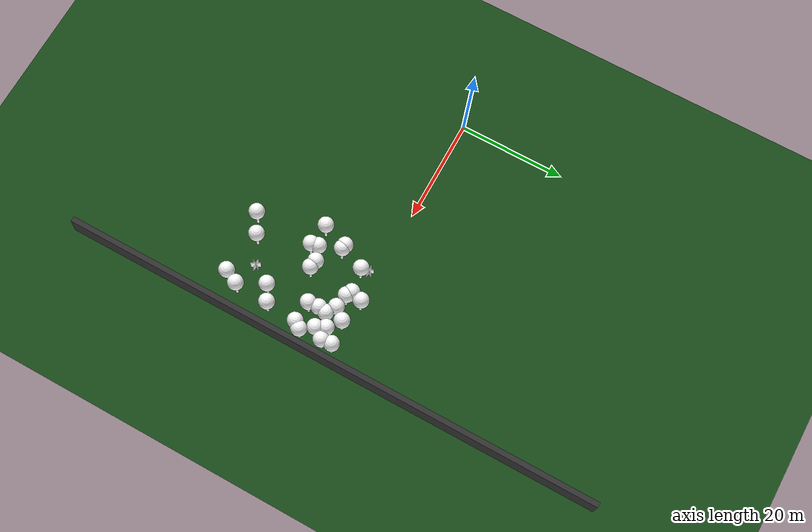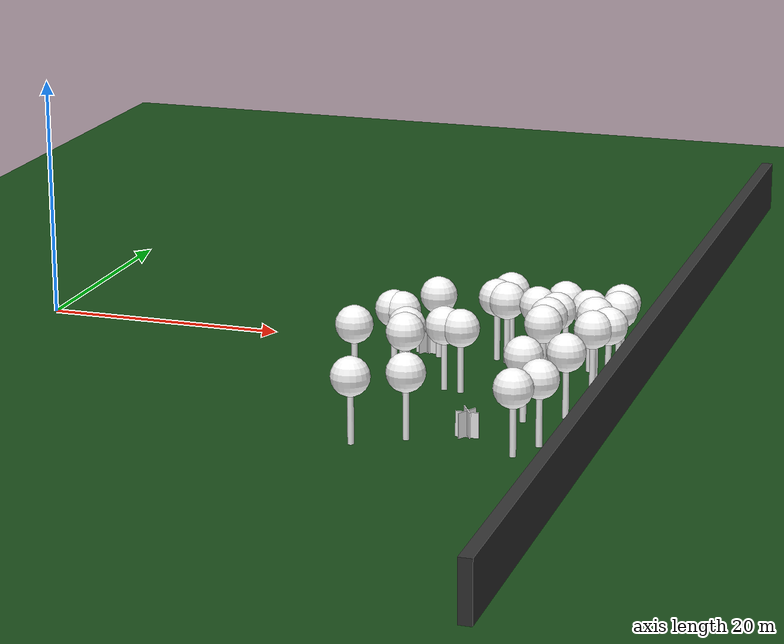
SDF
<sdf version="1.8">
 <world name="forest_world">
  <model name="tree_simple499">
   <static>1</static>
   <link name="link">
    <pose>0 0 0.1 0 -0 0</pose>
    <collision name="collision_trunk">
     <pose>0 0 2 0 -0 0</pose>
     <geometry><cylinder><radius>0.25</radius><length>4</length></cylinder></geometry>
    </collision>
    <collision name="collision_treetop">
     <pose>0 0 5.2 0 -0 0</pose>
     <geometry><sphere><radius>1.5</radius></sphere></geometry>
    </collision>
    <visual name="trunk">
     <pose>0 0 2 0 -0 0</pose>
     <geometry><cylinder><radius>0.25</radius><length>4</length></cylinder></geometry>
     <material>
      <ambient>0.5 0.5 0.5 1</ambient>
      <diffuse>1.0 1.0 1.0 1</diffuse>
      <specular>0.0 0.0 0.0 1</specular>
      <pbr>
       <metal>
        <albedo_map>../worlds/textures/tree_simple_trunk.jpg</albedo_map>
        <metalness>0.0</metalness>
        <roughness>0.8</roughness>
       </metal>
      </pbr>
     </material>
    </visual>
    <visual name="treetop">
     <pose>0 0 5.2 0 -0 0</pose>
     <geometry><sphere><radius>1.5</radius></sphere></geometry>
     <material>
      <ambient>0.5 0.5 0.5 1</ambient>
      <diffuse>1.0 1.0 1.0 1</diffuse>
      <specular>0.0 0.0 0.0 1</specular>
      <pbr>
       <metal>
        <albedo_map>../worlds/textures/tree_simple_treetop.jpg</albedo_map>
        <metalness>0.0</metalness>
        <roughness>0.9</roughness>
       </metal>
      </pbr>
     </material>
    </visual>
   </link>
   <pose>49.5772894431 -0.301033806291 0 0 -0 0</pose>
  </model>
  <model name="tree_simple473">
   <static>1</static>
   <link name="link">
    <pose>0 0 0.1 0 -0 0</pose>
    <collision name="collision_trunk">
     <pose>0 0 2 0 -0 0</pose>
     <geometry><cylinder><radius>0.25</radius><length>4</length></cylinder></geometry>
    </collision>
    <collision name="collision_treetop">
     <pose>0 0 5.2 0 -0 0</pose>
     <geometry><sphere><radius>1.5</radius></sphere></geometry>
    </collision>
    <visual name="trunk">
     <pose>0 0 2 0 -0 0</pose>
     <geometry><cylinder><radius>0.25</radius><length>4</length></cylinder></geometry>
     <material>
      <ambient>0.5 0.5 0.5 1</ambient>
      <diffuse>1.0 1.0 1.0 1</diffuse>
      <specular>0.0 0.0 0.0 1</specular>
      <pbr>
       <metal>
        <albedo_map>../worlds/textures/tree_simple_trunk.jpg</albedo_map>
        <metalness>0.0</metalness>
        <roughness>0.8</roughness>
       </metal>
      </pbr>
     </material>
    </visual>
    <visual name="treetop">
     <pose>0 0 5.2 0 -0 0</pose>
     <geometry><sphere><radius>1.5</radius></sphere></geometry>
     <material>
      <ambient>0.5 0.5 0.5 1</ambient>
      <diffuse>1.0 1.0 1.0 1</diffuse>
      <specular>0.0 0.0 0.0 1</specular>
      <pbr>
       <metal>
        <albedo_map>../worlds/textures/tree_simple_treetop.jpg</albedo_map>
        <metalness>0.0</metalness>
        <roughness>0.9</roughness>
       </metal>
      </pbr>
     </material>
    </visual>
   </link>
   <pose>35.3600050295 -12.4568326028 0 0 -0 0</pose>
  </model>
  <model name="tree_simple468">
   <static>1</static>
   <link name="link">
    <pose>0 0 0.1 0 -0 0</pose>
    <collision name="collision_trunk">
     <pose>0 0 2 0 -0 0</pose>
     <geometry><cylinder><radius>0.25</radius><length>4</length></cylinder></geometry>
    </collision>
    <collision name="collision_treetop">
     <pose>0 0 5.2 0 -0 0</pose>
     <geometry><sphere><radius>1.5</radius></sphere></geometry>
    </collision>
    <visual name="trunk">
     <pose>0 0 2 0 -0 0</pose>
     <geometry><cylinder><radius>0.25</radius><length>4</length></cylinder></geometry>
     <material>
      <ambient>0.5 0.5 0.5 1</ambient>
      <diffuse>1.0 1.0 1.0 1</diffuse>
      <specular>0.0 0.0 0.0 1</specular>
      <pbr>
       <metal>
        <albedo_map>../worlds/textures/tree_simple_trunk.jpg</albedo_map>
        <metalness>0.0</metalness>
        <roughness>0.8</roughness>
       </metal>
      </pbr>
     </material>
    </visual>
    <visual name="treetop">
     <pose>0 0 5.2 0 -0 0</pose>
     <geometry><sphere><radius>1.5</radius></sphere></geometry>
     <material>
      <ambient>0.5 0.5 0.5 1</ambient>
      <diffuse>1.0 1.0 1.0 1</diffuse>
      <specular>0.0 0.0 0.0 1</specular>
      <pbr>
       <metal>
        <albedo_map>../worlds/textures/tree_simple_treetop.jpg</albedo_map>
        <metalness>0.0</metalness>
        <roughness>0.9</roughness>
       </metal>
      </pbr>
     </material>
    </visual>
   </link>
   <pose>33.4354348071 -7.20044037788 0 0 -0 0</pose>
  </model>
  <model name="tree_simple461">
   <static>1</static>
   <link name="link">
    <pose>0 0 0.1 0 -0 0</pose>
    <collision name="collision_trunk">
     <pose>0 0 2 0 -0 0</pose>
     <geometry><cylinder><radius>0.25</radius><length>4</length></cylinder></geometry>
    </collision>
    <collision name="collision_treetop">
     <pose>0 0 5.2 0 -0 0</pose>
     <geometry><sphere><radius>1.5</radius></sphere></geometry>
    </collision>
    <visual name="trunk">
     <pose>0 0 2 0 -0 0</pose>
     <geometry><cylinder><radius>0.25</radius><length>4</length></cylinder></geometry>
     <material>
      <ambient>0.5 0.5 0.5 1</ambient>
      <diffuse>1.0 1.0 1.0 1</diffuse>
      <specular>0.0 0.0 0.0 1</specular>
      <pbr>
       <metal>
        <albedo_map>../worlds/textures/tree_simple_trunk.jpg</albedo_map>
        <metalness>0.0</metalness>
        <roughness>0.8</roughness>
       </metal>
      </pbr>
     </material>
    </visual>
    <visual name="treetop">
     <pose>0 0 5.2 0 -0 0</pose>
     <geometry><sphere><radius>1.5</radius></sphere></geometry>
     <material>
      <ambient>0.5 0.5 0.5 1</ambient>
      <diffuse>1.0 1.0 1.0 1</diffuse>
      <specular>0.0 0.0 0.0 1</specular>
      <pbr>
       <metal>
        <albedo_map>../worlds/textures/tree_simple_treetop.jpg</albedo_map>
        <metalness>0.0</metalness>
        <roughness>0.9</roughness>
       </metal>
      </pbr>
     </material>
    </visual>
   </link>
   <pose>48.4583895912 -13.8275705943 0 0 -0 0</pose>
  </model>
  <model name="tree_simple391">
   <static>1</static>
   <link name="link">
    <pose>0 0 0.1 0 -0 0</pose>
    <collision name="collision_trunk">
     <pose>0 0 2 0 -0 0</pose>
     <geometry><cylinder><radius>0.25</radius><length>4</length></cylinder></geometry>
    </collision>
    <collision name="collision_treetop">
     <pose>0 0 5.2 0 -0 0</pose>
     <geometry><sphere><radius>1.5</radius></sphere></geometry>
    </collision>
    <visual name="trunk">
     <pose>0 0 2 0 -0 0</pose>
     <geometry><cylinder><radius>0.25</radius><length>4</length></cylinder></geometry>
     <material>
      <ambient>0.5 0.5 0.5 1</ambient>
      <diffuse>1.0 1.0 1.0 1</diffuse>
      <specular>0.0 0.0 0.0 1</specular>
      <pbr>
       <metal>
        <albedo_map>../worlds/textures/tree_simple_trunk.jpg</albedo_map>
        <metalness>0.0</metalness>
        <roughness>0.8</roughness>
       </metal>
      </pbr>
     </material>
    </visual>
    <visual name="treetop">
     <pose>0 0 5.2 0 -0 0</pose>
     <geometry><sphere><radius>1.5</radius></sphere></geometry>
     <material>
      <ambient>0.5 0.5 0.5 1</ambient>
      <diffuse>1.0 1.0 1.0 1</diffuse>
      <specular>0.0 0.0 0.0 1</specular>
      <pbr>
       <metal>
        <albedo_map>../worlds/textures/tree_simple_treetop.jpg</albedo_map>
        <metalness>0.0</metalness>
        <roughness>0.9</roughness>
       </metal>
      </pbr>
     </material>
    </visual>
   </link>
   <pose>35.0521422103 -11.0450283788 0 0 -0 0</pose>
  </model>
  <model name="tree_simple390">
   <static>1</static>
   <link name="link">
    <pose>0 0 0.1 0 -0 0</pose>
    <collision name="collision_trunk">
     <pose>0 0 2 0 -0 0</pose>
     <geometry><cylinder><radius>0.25</radius><length>4</length></cylinder></geometry>
    </collision>
    <collision name="collision_treetop">
     <pose>0 0 5.2 0 -0 0</pose>
     <geometry><sphere><radius>1.5</radius></sphere></geometry>
    </collision>
    <visual name="trunk">
     <pose>0 0 2 0 -0 0</pose>
     <geometry><cylinder><radius>0.25</radius><length>4</length></cylinder></geometry>
     <material>
      <ambient>0.5 0.5 0.5 1</ambient>
      <diffuse>1.0 1.0 1.0 1</diffuse>
      <specular>0.0 0.0 0.0 1</specular>
      <pbr>
       <metal>
        <albedo_map>../worlds/textures/tree_simple_trunk.jpg</albedo_map>
        <metalness>0.0</metalness>
        <roughness>0.8</roughness>
       </metal>
      </pbr>
     </material>
    </visual>
    <visual name="treetop">
     <pose>0 0 5.2 0 -0 0</pose>
     <geometry><sphere><radius>1.5</radius></sphere></geometry>
     <material>
      <ambient>0.5 0.5 0.5 1</ambient>
      <diffuse>1.0 1.0 1.0 1</diffuse>
      <specular>0.0 0.0 0.0 1</specular>
      <pbr>
       <metal>
        <albedo_map>../worlds/textures/tree_simple_treetop.jpg</albedo_map>
        <metalness>0.0</metalness>
        <roughness>0.9</roughness>
       </metal>
      </pbr>
     </material>
    </visual>
   </link>
   <pose>34.8279648661 -23.7978261523 0 0 -0 0</pose>
  </model>
  <model name="tree_simple385">
   <static>1</static>
   <link name="link">
    <pose>0 0 0.1 0 -0 0</pose>
    <collision name="collision_trunk">
     <pose>0 0 2 0 -0 0</pose>
     <geometry><cylinder><radius>0.25</radius><length>4</length></cylinder></geometry>
    </collision>
    <collision name="collision_treetop">
     <pose>0 0 5.2 0 -0 0</pose>
     <geometry><sphere><radius>1.5</radius></sphere></geometry>
    </collision>
    <visual name="trunk">
     <pose>0 0 2 0 -0 0</pose>
     <geometry><cylinder><radius>0.25</radius><length>4</length></cylinder></geometry>
     <material>
      <ambient>0.5 0.5 0.5 1</ambient>
      <diffuse>1.0 1.0 1.0 1</diffuse>
      <specular>0.0 0.0 0.0 1</specular>
      <pbr>
       <metal>
        <albedo_map>../worlds/textures/tree_simple_trunk.jpg</albedo_map>
        <metalness>0.0</metalness>
        <roughness>0.8</roughness>
       </metal>
      </pbr>
     </material>
    </visual>
    <visual name="treetop">
     <pose>0 0 5.2 0 -0 0</pose>
     <geometry><sphere><radius>1.5</radius></sphere></geometry>
     <material>
      <ambient>0.5 0.5 0.5 1</ambient>
      <diffuse>1.0 1.0 1.0 1</diffuse>
      <specular>0.0 0.0 0.0 1</specular>
      <pbr>
       <metal>
        <albedo_map>../worlds/textures/tree_simple_treetop.jpg</albedo_map>
        <metalness>0.0</metalness>
        <roughness>0.9</roughness>
       </metal>
      </pbr>
     </material>
    </visual>
   </link>
   <pose>32.6946046779 -7.01468529962 0 0 -0 0</pose>
  </model>
  <model name="tree_simple380">
   <static>1</static>
   <link name="link">
    <pose>0 0 0.1 0 -0 0</pose>
    <collision name="collision_trunk">
     <pose>0 0 2 0 -0 0</pose>
     <geometry><cylinder><radius>0.25</radius><length>4</length></cylinder></geometry>
    </collision>
    <collision name="collision_treetop">
     <pose>0 0 5.2 0 -0 0</pose>
     <geometry><sphere><radius>1.5</radius></sphere></geometry>
    </collision>
    <visual name="trunk">
     <pose>0 0 2 0 -0 0</pose>
     <geometry><cylinder><radius>0.25</radius><length>4</length></cylinder></geometry>
     <material>
      <ambient>0.5 0.5 0.5 1</ambient>
      <diffuse>1.0 1.0 1.0 1</diffuse>
      <specular>0.0 0.0 0.0 1</specular>
      <pbr>
       <metal>
        <albedo_map>../worlds/textures/tree_simple_trunk.jpg</albedo_map>
        <metalness>0.0</metalness>
        <roughness>0.8</roughness>
       </metal>
      </pbr>
     </material>
    </visual>
    <visual name="treetop">
     <pose>0 0 5.2 0 -0 0</pose>
     <geometry><sphere><radius>1.5</radius></sphere></geometry>
     <material>
      <ambient>0.5 0.5 0.5 1</ambient>
      <diffuse>1.0 1.0 1.0 1</diffuse>
      <specular>0.0 0.0 0.0 1</specular>
      <pbr>
       <metal>
        <albedo_map>../worlds/textures/tree_simple_treetop.jpg</albedo_map>
        <metalness>0.0</metalness>
        <roughness>0.9</roughness>
       </metal>
      </pbr>
     </material>
    </visual>
   </link>
   <pose>49.0222625073 -7.79616728684 0 0 -0 0</pose>
  </model>
  <model name="tree_simple378">
   <static>1</static>
   <link name="link">
    <pose>0 0 0.1 0 -0 0</pose>
    <collision name="collision_trunk">
     <pose>0 0 2 0 -0 0</pose>
     <geometry><cylinder><radius>0.25</radius><length>4</length></cylinder></geometry>
    </collision>
    <collision name="collision_treetop">
     <pose>0 0 5.2 0 -0 0</pose>
     <geometry><sphere><radius>1.5</radius></sphere></geometry>
    </collision>
    <visual name="trunk">
     <pose>0 0 2 0 -0 0</pose>
     <geometry><cylinder><radius>0.25</radius><length>4</length></cylinder></geometry>
     <material>
      <ambient>0.5 0.5 0.5 1</ambient>
      <diffuse>1.0 1.0 1.0 1</diffuse>
      <specular>0.0 0.0 0.0 1</specular>
      <pbr>
       <metal>
        <albedo_map>../worlds/textures/tree_simple_trunk.jpg</albedo_map>
        <metalness>0.0</metalness>
        <roughness>0.8</roughness>
       </metal>
      </pbr>
     </material>
    </visual>
    <visual name="treetop">
     <pose>0 0 5.2 0 -0 0</pose>
     <geometry><sphere><radius>1.5</radius></sphere></geometry>
     <material>
      <ambient>0.5 0.5 0.5 1</ambient>
      <diffuse>1.0 1.0 1.0 1</diffuse>
      <specular>0.0 0.0 0.0 1</specular>
      <pbr>
       <metal>
        <albedo_map>../worlds/textures/tree_simple_treetop.jpg</albedo_map>
        <metalness>0.0</metalness>
        <roughness>0.9</roughness>
       </metal>
      </pbr>
     </material>
    </visual>
   </link>
   <pose>45.079812121 -0.754391736344 0 0 -0 0</pose>
  </model>
  <model name="tree_simple374">
   <static>1</static>
   <link name="link">
    <pose>0 0 0.1 0 -0 0</pose>
    <collision name="collision_trunk">
     <pose>0 0 2 0 -0 0</pose>
     <geometry><cylinder><radius>0.25</radius><length>4</length></cylinder></geometry>
    </collision>
    <collision name="collision_treetop">
     <pose>0 0 5.2 0 -0 0</pose>
     <geometry><sphere><radius>1.5</radius></sphere></geometry>
    </collision>
    <visual name="trunk">
     <pose>0 0 2 0 -0 0</pose>
     <geometry><cylinder><radius>0.25</radius><length>4</length></cylinder></geometry>
     <material>
      <ambient>0.5 0.5 0.5 1</ambient>
      <diffuse>1.0 1.0 1.0 1</diffuse>
      <specular>0.0 0.0 0.0 1</specular>
      <pbr>
       <metal>
        <albedo_map>../worlds/textures/tree_simple_trunk.jpg</albedo_map>
        <metalness>0.0</metalness>
        <roughness>0.8</roughness>
       </metal>
      </pbr>
     </material>
    </visual>
    <visual name="treetop">
     <pose>0 0 5.2 0 -0 0</pose>
     <geometry><sphere><radius>1.5</radius></sphere></geometry>
     <material>
      <ambient>0.5 0.5 0.5 1</ambient>
      <diffuse>1.0 1.0 1.0 1</diffuse>
      <specular>0.0 0.0 0.0 1</specular>
      <pbr>
       <metal>
        <albedo_map>../worlds/textures/tree_simple_treetop.jpg</albedo_map>
        <metalness>0.0</metalness>
        <roughness>0.9</roughness>
       </metal>
      </pbr>
     </material>
    </visual>
   </link>
   <pose>45.5880490305 -15.4743351493 0 0 -0 0</pose>
  </model>
  <model name="tree_simple352">
   <static>1</static>
   <link name="link">
    <pose>0 0 0.1 0 -0 0</pose>
    <collision name="collision_trunk">
     <pose>0 0 2 0 -0 0</pose>
     <geometry><cylinder><radius>0.25</radius><length>4</length></cylinder></geometry>
    </collision>
    <collision name="collision_treetop">
     <pose>0 0 5.2 0 -0 0</pose>
     <geometry><sphere><radius>1.5</radius></sphere></geometry>
    </collision>
    <visual name="trunk">
     <pose>0 0 2 0 -0 0</pose>
     <geometry><cylinder><radius>0.25</radius><length>4</length></cylinder></geometry>
     <material>
      <ambient>0.5 0.5 0.5 1</ambient>
      <diffuse>1.0 1.0 1.0 1</diffuse>
      <specular>0.0 0.0 0.0 1</specular>
      <pbr>
       <metal>
        <albedo_map>../worlds/textures/tree_simple_trunk.jpg</albedo_map>
        <metalness>0.0</metalness>
        <roughness>0.8</roughness>
       </metal>
      </pbr>
     </material>
    </visual>
    <visual name="treetop">
     <pose>0 0 5.2 0 -0 0</pose>
     <geometry><sphere><radius>1.5</radius></sphere></geometry>
     <material>
      <ambient>0.5 0.5 0.5 1</ambient>
      <diffuse>1.0 1.0 1.0 1</diffuse>
      <specular>0.0 0.0 0.0 1</specular>
      <pbr>
       <metal>
        <albedo_map>../worlds/textures/tree_simple_treetop.jpg</albedo_map>
        <metalness>0.0</metalness>
        <roughness>0.9</roughness>
       </metal>
      </pbr>
     </material>
    </visual>
   </link>
   <pose>37.7714253308 -10.085576638 0 0 -0 0</pose>
  </model>
  <model name="tree_simple278">
   <static>1</static>
   <link name="link">
    <pose>0 0 0.1 0 -0 0</pose>
    <collision name="collision_trunk">
     <pose>0 0 2 0 -0 0</pose>
     <geometry><cylinder><radius>0.25</radius><length>4</length></cylinder></geometry>
    </collision>
    <collision name="collision_treetop">
     <pose>0 0 5.2 0 -0 0</pose>
     <geometry><sphere><radius>1.5</radius></sphere></geometry>
    </collision>
    <visual name="trunk">
     <pose>0 0 2 0 -0 0</pose>
     <geometry><cylinder><radius>0.25</radius><length>4</length></cylinder></geometry>
     <material>
      <ambient>0.5 0.5 0.5 1</ambient>
      <diffuse>1.0 1.0 1.0 1</diffuse>
      <specular>0.0 0.0 0.0 1</specular>
      <pbr>
       <metal>
        <albedo_map>../worlds/textures/tree_simple_trunk.jpg</albedo_map>
        <metalness>0.0</metalness>
        <roughness>0.8</roughness>
       </metal>
      </pbr>
     </material>
    </visual>
    <visual name="treetop">
     <pose>0 0 5.2 0 -0 0</pose>
     <geometry><sphere><radius>1.5</radius></sphere></geometry>
     <material>
      <ambient>0.5 0.5 0.5 1</ambient>
      <diffuse>1.0 1.0 1.0 1</diffuse>
      <specular>0.0 0.0 0.0 1</specular>
      <pbr>
       <metal>
        <albedo_map>../worlds/textures/tree_simple_treetop.jpg</albedo_map>
        <metalness>0.0</metalness>
        <roughness>0.9</roughness>
       </metal>
      </pbr>
     </material>
    </visual>
   </link>
   <pose>38.4116061074 -21.7404675264 0 0 -0 0</pose>
  </model>
  <model name="tree_simple244">
   <static>1</static>
   <link name="link">
    <pose>0 0 0.1 0 -0 0</pose>
    <collision name="collision_trunk">
     <pose>0 0 2 0 -0 0</pose>
     <geometry><cylinder><radius>0.25</radius><length>4</length></cylinder></geometry>
    </collision>
    <collision name="collision_treetop">
     <pose>0 0 5.2 0 -0 0</pose>
     <geometry><sphere><radius>1.5</radius></sphere></geometry>
    </collision>
    <visual name="trunk">
     <pose>0 0 2 0 -0 0</pose>
     <geometry><cylinder><radius>0.25</radius><length>4</length></cylinder></geometry>
     <material>
      <ambient>0.5 0.5 0.5 1</ambient>
      <diffuse>1.0 1.0 1.0 1</diffuse>
      <specular>0.0 0.0 0.0 1</specular>
      <pbr>
       <metal>
        <albedo_map>../worlds/textures/tree_simple_trunk.jpg</albedo_map>
        <metalness>0.0</metalness>
        <roughness>0.8</roughness>
       </metal>
      </pbr>
     </material>
    </visual>
    <visual name="treetop">
     <pose>0 0 5.2 0 -0 0</pose>
     <geometry><sphere><radius>1.5</radius></sphere></geometry>
     <material>
      <ambient>0.5 0.5 0.5 1</ambient>
      <diffuse>1.0 1.0 1.0 1</diffuse>
      <specular>0.0 0.0 0.0 1</specular>
      <pbr>
       <metal>
        <albedo_map>../worlds/textures/tree_simple_treetop.jpg</albedo_map>
        <metalness>0.0</metalness>
        <roughness>0.9</roughness>
       </metal>
      </pbr>
     </material>
    </visual>
   </link>
   <pose>45.1720023685 -3.9344800414 0 0 -0 0</pose>
  </model>
  <model name="tree_simple235">
   <static>1</static>
   <link name="link">
    <pose>0 0 0.1 0 -0 0</pose>
    <collision name="collision_trunk">
     <pose>0 0 2 0 -0 0</pose>
     <geometry><cylinder><radius>0.25</radius><length>4</length></cylinder></geometry>
    </collision>
    <collision name="collision_treetop">
     <pose>0 0 5.2 0 -0 0</pose>
     <geometry><sphere><radius>1.5</radius></sphere></geometry>
    </collision>
    <visual name="trunk">
     <pose>0 0 2 0 -0 0</pose>
     <geometry><cylinder><radius>0.25</radius><length>4</length></cylinder></geometry>
     <material>
      <ambient>0.5 0.5 0.5 1</ambient>
      <diffuse>1.0 1.0 1.0 1</diffuse>
      <specular>0.0 0.0 0.0 1</specular>
      <pbr>
       <metal>
        <albedo_map>../worlds/textures/tree_simple_trunk.jpg</albedo_map>
        <metalness>0.0</metalness>
        <roughness>0.8</roughness>
       </metal>
      </pbr>
     </material>
    </visual>
    <visual name="treetop">
     <pose>0 0 5.2 0 -0 0</pose>
     <geometry><sphere><radius>1.5</radius></sphere></geometry>
     <material>
      <ambient>0.5 0.5 0.5 1</ambient>
      <diffuse>1.0 1.0 1.0 1</diffuse>
      <specular>0.0 0.0 0.0 1</specular>
      <pbr>
       <metal>
        <albedo_map>../worlds/textures/tree_simple_treetop.jpg</albedo_map>
        <metalness>0.0</metalness>
        <roughness>0.9</roughness>
       </metal>
      </pbr>
     </material>
    </visual>
   </link>
   <pose>47.4649473564 -2.51877980815 0 0 -0 0</pose>
  </model>
  <model name="tree_simple217">
   <static>1</static>
   <link name="link">
    <pose>0 0 0.1 0 -0 0</pose>
    <collision name="collision_trunk">
     <pose>0 0 2 0 -0 0</pose>
     <geometry><cylinder><radius>0.25</radius><length>4</length></cylinder></geometry>
    </collision>
    <collision name="collision_treetop">
     <pose>0 0 5.2 0 -0 0</pose>
     <geometry><sphere><radius>1.5</radius></sphere></geometry>
    </collision>
    <visual name="trunk">
     <pose>0 0 2 0 -0 0</pose>
     <geometry><cylinder><radius>0.25</radius><length>4</length></cylinder></geometry>
     <material>
      <ambient>0.5 0.5 0.5 1</ambient>
      <diffuse>1.0 1.0 1.0 1</diffuse>
      <specular>0.0 0.0 0.0 1</specular>
      <pbr>
       <metal>
        <albedo_map>../worlds/textures/tree_simple_trunk.jpg</albedo_map>
        <metalness>0.0</metalness>
        <roughness>0.8</roughness>
       </metal>
      </pbr>
     </material>
    </visual>
    <visual name="treetop">
     <pose>0 0 5.2 0 -0 0</pose>
     <geometry><sphere><radius>1.5</radius></sphere></geometry>
     <material>
      <ambient>0.5 0.5 0.5 1</ambient>
      <diffuse>1.0 1.0 1.0 1</diffuse>
      <specular>0.0 0.0 0.0 1</specular>
      <pbr>
       <metal>
        <albedo_map>../worlds/textures/tree_simple_treetop.jpg</albedo_map>
        <metalness>0.0</metalness>
        <roughness>0.9</roughness>
       </metal>
      </pbr>
     </material>
    </visual>
   </link>
   <pose>49.7701486167 -2.25839681325 0 0 -0 0</pose>
  </model>
  <model name="tree_simple210">
   <static>1</static>
   <link name="link">
    <pose>0 0 0.1 0 -0 0</pose>
    <collision name="collision_trunk">
     <pose>0 0 2 0 -0 0</pose>
     <geometry><cylinder><radius>0.25</radius><length>4</length></cylinder></geometry>
    </collision>
    <collision name="collision_treetop">
     <pose>0 0 5.2 0 -0 0</pose>
     <geometry><sphere><radius>1.5</radius></sphere></geometry>
    </collision>
    <visual name="trunk">
     <pose>0 0 2 0 -0 0</pose>
     <geometry><cylinder><radius>0.25</radius><length>4</length></cylinder></geometry>
     <material>
      <ambient>0.5 0.5 0.5 1</ambient>
      <diffuse>1.0 1.0 1.0 1</diffuse>
      <specular>0.0 0.0 0.0 1</specular>
      <pbr>
       <metal>
        <albedo_map>../worlds/textures/tree_simple_trunk.jpg</albedo_map>
        <metalness>0.0</metalness>
        <roughness>0.8</roughness>
       </metal>
      </pbr>
     </material>
    </visual>
    <visual name="treetop">
     <pose>0 0 5.2 0 -0 0</pose>
     <geometry><sphere><radius>1.5</radius></sphere></geometry>
     <material>
      <ambient>0.5 0.5 0.5 1</ambient>
      <diffuse>1.0 1.0 1.0 1</diffuse>
      <specular>0.0 0.0 0.0 1</specular>
      <pbr>
       <metal>
        <albedo_map>../worlds/textures/tree_simple_treetop.jpg</albedo_map>
        <metalness>0.0</metalness>
        <roughness>0.9</roughness>
       </metal>
      </pbr>
     </material>
    </visual>
   </link>
   <pose>49.9611404215 -6.54237160605 0 0 -0 0</pose>
  </model>
  <model name="tree_simple206">
   <static>1</static>
   <link name="link">
    <pose>0 0 0.1 0 -0 0</pose>
    <collision name="collision_trunk">
     <pose>0 0 2 0 -0 0</pose>
     <geometry><cylinder><radius>0.25</radius><length>4</length></cylinder></geometry>
    </collision>
    <collision name="collision_treetop">
     <pose>0 0 5.2 0 -0 0</pose>
     <geometry><sphere><radius>1.5</radius></sphere></geometry>
    </collision>
    <visual name="trunk">
     <pose>0 0 2 0 -0 0</pose>
     <geometry><cylinder><radius>0.25</radius><length>4</length></cylinder></geometry>
     <material>
      <ambient>0.5 0.5 0.5 1</ambient>
      <diffuse>1.0 1.0 1.0 1</diffuse>
      <specular>0.0 0.0 0.0 1</specular>
      <pbr>
       <metal>
        <albedo_map>../worlds/textures/tree_simple_trunk.jpg</albedo_map>
        <metalness>0.0</metalness>
        <roughness>0.8</roughness>
       </metal>
      </pbr>
     </material>
    </visual>
    <visual name="treetop">
     <pose>0 0 5.2 0 -0 0</pose>
     <geometry><sphere><radius>1.5</radius></sphere></geometry>
     <material>
      <ambient>0.5 0.5 0.5 1</ambient>
      <diffuse>1.0 1.0 1.0 1</diffuse>
      <specular>0.0 0.0 0.0 1</specular>
      <pbr>
       <metal>
        <albedo_map>../worlds/textures/tree_simple_treetop.jpg</albedo_map>
        <metalness>0.0</metalness>
        <roughness>0.9</roughness>
       </metal>
      </pbr>
     </material>
    </visual>
   </link>
   <pose>46.8540816615 -22.8682209639 0 0 -0 0</pose>
  </model>
  <model name="tree_simple204">
   <static>1</static>
   <link name="link">
    <pose>0 0 0.1 0 -0 0</pose>
    <collision name="collision_trunk">
     <pose>0 0 2 0 -0 0</pose>
     <geometry><cylinder><radius>0.25</radius><length>4</length></cylinder></geometry>
    </collision>
    <collision name="collision_treetop">
     <pose>0 0 5.2 0 -0 0</pose>
     <geometry><sphere><radius>1.5</radius></sphere></geometry>
    </collision>
    <visual name="trunk">
     <pose>0 0 2 0 -0 0</pose>
     <geometry><cylinder><radius>0.25</radius><length>4</length></cylinder></geometry>
     <material>
      <ambient>0.5 0.5 0.5 1</ambient>
      <diffuse>1.0 1.0 1.0 1</diffuse>
      <specular>0.0 0.0 0.0 1</specular>
      <pbr>
       <metal>
        <albedo_map>../worlds/textures/tree_simple_trunk.jpg</albedo_map>
        <metalness>0.0</metalness>
        <roughness>0.8</roughness>
       </metal>
      </pbr>
     </material>
    </visual>
    <visual name="treetop">
     <pose>0 0 5.2 0 -0 0</pose>
     <geometry><sphere><radius>1.5</radius></sphere></geometry>
     <material>
      <ambient>0.5 0.5 0.5 1</ambient>
      <diffuse>1.0 1.0 1.0 1</diffuse>
      <specular>0.0 0.0 0.0 1</specular>
      <pbr>
       <metal>
        <albedo_map>../worlds/textures/tree_simple_treetop.jpg</albedo_map>
        <metalness>0.0</metalness>
        <roughness>0.9</roughness>
       </metal>
      </pbr>
     </material>
    </visual>
   </link>
   <pose>40.6572947186 -2.37352514754 0 0 -0 0</pose>
  </model>
  <model name="tree_simple203">
   <static>1</static>
   <link name="link">
    <pose>0 0 0.1 0 -0 0</pose>
    <collision name="collision_trunk">
     <pose>0 0 2 0 -0 0</pose>
     <geometry><cylinder><radius>0.25</radius><length>4</length></cylinder></geometry>
    </collision>
    <collision name="collision_treetop">
     <pose>0 0 5.2 0 -0 0</pose>
     <geometry><sphere><radius>1.5</radius></sphere></geometry>
    </collision>
    <visual name="trunk">
     <pose>0 0 2 0 -0 0</pose>
     <geometry><cylinder><radius>0.25</radius><length>4</length></cylinder></geometry>
     <material>
      <ambient>0.5 0.5 0.5 1</ambient>
      <diffuse>1.0 1.0 1.0 1</diffuse>
      <specular>0.0 0.0 0.0 1</specular>
      <pbr>
       <metal>
        <albedo_map>../worlds/textures/tree_simple_trunk.jpg</albedo_map>
        <metalness>0.0</metalness>
        <roughness>0.8</roughness>
       </metal>
      </pbr>
     </material>
    </visual>
    <visual name="treetop">
     <pose>0 0 5.2 0 -0 0</pose>
     <geometry><sphere><radius>1.5</radius></sphere></geometry>
     <material>
      <ambient>0.5 0.5 0.5 1</ambient>
      <diffuse>1.0 1.0 1.0 1</diffuse>
      <specular>0.0 0.0 0.0 1</specular>
      <pbr>
       <metal>
        <albedo_map>../worlds/textures/tree_simple_treetop.jpg</albedo_map>
        <metalness>0.0</metalness>
        <roughness>0.9</roughness>
       </metal>
      </pbr>
     </material>
    </visual>
   </link>
   <pose>48.3599333119 -4.25982043144 0 0 -0 0</pose>
  </model>
  <model name="tree_simple192">
   <static>1</static>
   <link name="link">
    <pose>0 0 0.1 0 -0 0</pose>
    <collision name="collision_trunk">
     <pose>0 0 2 0 -0 0</pose>
     <geometry><cylinder><radius>0.25</radius><length>4</length></cylinder></geometry>
    </collision>
    <collision name="collision_treetop">
     <pose>0 0 5.2 0 -0 0</pose>
     <geometry><sphere><radius>1.5</radius></sphere></geometry>
    </collision>
    <visual name="trunk">
     <pose>0 0 2 0 -0 0</pose>
     <geometry><cylinder><radius>0.25</radius><length>4</length></cylinder></geometry>
     <material>
      <ambient>0.5 0.5 0.5 1</ambient>
      <diffuse>1.0 1.0 1.0 1</diffuse>
      <specular>0.0 0.0 0.0 1</specular>
      <pbr>
       <metal>
        <albedo_map>../worlds/textures/tree_simple_trunk.jpg</albedo_map>
        <metalness>0.0</metalness>
        <roughness>0.8</roughness>
       </metal>
      </pbr>
     </material>
    </visual>
    <visual name="treetop">
     <pose>0 0 5.2 0 -0 0</pose>
     <geometry><sphere><radius>1.5</radius></sphere></geometry>
     <material>
      <ambient>0.5 0.5 0.5 1</ambient>
      <diffuse>1.0 1.0 1.0 1</diffuse>
      <specular>0.0 0.0 0.0 1</specular>
      <pbr>
       <metal>
        <albedo_map>../worlds/textures/tree_simple_treetop.jpg</albedo_map>
        <metalness>0.0</metalness>
        <roughness>0.9</roughness>
       </metal>
      </pbr>
     </material>
    </visual>
   </link>
   <pose>39.1897553286 -10.376920586 0 0 -0 0</pose>
  </model>
  <model name="tree_simple185">
   <static>1</static>
   <link name="link">
    <pose>0 0 0.1 0 -0 0</pose>
    <collision name="collision_trunk">
     <pose>0 0 2 0 -0 0</pose>
     <geometry><cylinder><radius>0.25</radius><length>4</length></cylinder></geometry>
    </collision>
    <collision name="collision_treetop">
     <pose>0 0 5.2 0 -0 0</pose>
     <geometry><sphere><radius>1.5</radius></sphere></geometry>
    </collision>
    <visual name="trunk">
     <pose>0 0 2 0 -0 0</pose>
     <geometry><cylinder><radius>0.25</radius><length>4</length></cylinder></geometry>
     <material>
      <ambient>0.5 0.5 0.5 1</ambient>
      <diffuse>1.0 1.0 1.0 1</diffuse>
      <specular>0.0 0.0 0.0 1</specular>
      <pbr>
       <metal>
        <albedo_map>../worlds/textures/tree_simple_trunk.jpg</albedo_map>
        <metalness>0.0</metalness>
        <roughness>0.8</roughness>
       </metal>
      </pbr>
     </material>
    </visual>
    <visual name="treetop">
     <pose>0 0 5.2 0 -0 0</pose>
     <geometry><sphere><radius>1.5</radius></sphere></geometry>
     <material>
      <ambient>0.5 0.5 0.5 1</ambient>
      <diffuse>1.0 1.0 1.0 1</diffuse>
      <specular>0.0 0.0 0.0 1</specular>
      <pbr>
       <metal>
        <albedo_map>../worlds/textures/tree_simple_treetop.jpg</albedo_map>
        <metalness>0.0</metalness>
        <roughness>0.9</roughness>
       </metal>
      </pbr>
     </material>
    </visual>
   </link>
   <pose>48.1272235893 -20.3232479012 0 0 -0 0</pose>
  </model>
  <model name="tree_simple118">
   <static>1</static>
   <link name="link">
    <pose>0 0 0.1 0 -0 0</pose>
    <collision name="collision_trunk">
     <pose>0 0 2 0 -0 0</pose>
     <geometry><cylinder><radius>0.25</radius><length>4</length></cylinder></geometry>
    </collision>
    <collision name="collision_treetop">
     <pose>0 0 5.2 0 -0 0</pose>
     <geometry><sphere><radius>1.5</radius></sphere></geometry>
    </collision>
    <visual name="trunk">
     <pose>0 0 2 0 -0 0</pose>
     <geometry><cylinder><radius>0.25</radius><length>4</length></cylinder></geometry>
     <material>
      <ambient>0.5 0.5 0.5 1</ambient>
      <diffuse>1.0 1.0 1.0 1</diffuse>
      <specular>0.0 0.0 0.0 1</specular>
      <pbr>
       <metal>
        <albedo_map>../worlds/textures/tree_simple_trunk.jpg</albedo_map>
        <metalness>0.0</metalness>
        <roughness>0.8</roughness>
       </metal>
      </pbr>
     </material>
    </visual>
    <visual name="treetop">
     <pose>0 0 5.2 0 -0 0</pose>
     <geometry><sphere><radius>1.5</radius></sphere></geometry>
     <material>
      <ambient>0.5 0.5 0.5 1</ambient>
      <diffuse>1.0 1.0 1.0 1</diffuse>
      <specular>0.0 0.0 0.0 1</specular>
      <pbr>
       <metal>
        <albedo_map>../worlds/textures/tree_simple_treetop.jpg</albedo_map>
        <metalness>0.0</metalness>
        <roughness>0.9</roughness>
       </metal>
      </pbr>
     </material>
    </visual>
   </link>
   <pose>35.015129688 -2.52683434866 0 0 -0 0</pose>
  </model>
  <model name="tree_simple68">
   <static>1</static>
   <link name="link">
    <pose>0 0 0.1 0 -0 0</pose>
    <collision name="collision_trunk">
     <pose>0 0 2 0 -0 0</pose>
     <geometry><cylinder><radius>0.25</radius><length>4</length></cylinder></geometry>
    </collision>
    <collision name="collision_treetop">
     <pose>0 0 5.2 0 -0 0</pose>
     <geometry><sphere><radius>1.5</radius></sphere></geometry>
    </collision>
    <visual name="trunk">
     <pose>0 0 2 0 -0 0</pose>
     <geometry><cylinder><radius>0.25</radius><length>4</length></cylinder></geometry>
     <material>
      <ambient>0.5 0.5 0.5 1</ambient>
      <diffuse>1.0 1.0 1.0 1</diffuse>
      <specular>0.0 0.0 0.0 1</specular>
      <pbr>
       <metal>
        <albedo_map>../worlds/textures/tree_simple_trunk.jpg</albedo_map>
        <metalness>0.0</metalness>
        <roughness>0.8</roughness>
       </metal>
      </pbr>
     </material>
    </visual>
    <visual name="treetop">
     <pose>0 0 5.2 0 -0 0</pose>
     <geometry><sphere><radius>1.5</radius></sphere></geometry>
     <material>
      <ambient>0.5 0.5 0.5 1</ambient>
      <diffuse>1.0 1.0 1.0 1</diffuse>
      <specular>0.0 0.0 0.0 1</specular>
      <pbr>
       <metal>
        <albedo_map>../worlds/textures/tree_simple_treetop.jpg</albedo_map>
        <metalness>0.0</metalness>
        <roughness>0.9</roughness>
       </metal>
      </pbr>
     </material>
    </visual>
   </link>
   <pose>43.3405594591 -2.82078180006 0 0 -0 0</pose>
  </model>
  <model name="tree_simple63">
   <static>1</static>
   <link name="link">
    <pose>0 0 0.1 0 -0 0</pose>
    <collision name="collision_trunk">
     <pose>0 0 2 0 -0 0</pose>
     <geometry><cylinder><radius>0.25</radius><length>4</length></cylinder></geometry>
    </collision>
    <collision name="collision_treetop">
     <pose>0 0 5.2 0 -0 0</pose>
     <geometry><sphere><radius>1.5</radius></sphere></geometry>
    </collision>
    <visual name="trunk">
     <pose>0 0 2 0 -0 0</pose>
     <geometry><cylinder><radius>0.25</radius><length>4</length></cylinder></geometry>
     <material>
      <ambient>0.5 0.5 0.5 1</ambient>
      <diffuse>1.0 1.0 1.0 1</diffuse>
      <specular>0.0 0.0 0.0 1</specular>
      <pbr>
       <metal>
        <albedo_map>../worlds/textures/tree_simple_trunk.jpg</albedo_map>
        <metalness>0.0</metalness>
        <roughness>0.8</roughness>
       </metal>
      </pbr>
     </material>
    </visual>
    <visual name="treetop">
     <pose>0 0 5.2 0 -0 0</pose>
     <geometry><sphere><radius>1.5</radius></sphere></geometry>
     <material>
      <ambient>0.5 0.5 0.5 1</ambient>
      <diffuse>1.0 1.0 1.0 1</diffuse>
      <specular>0.0 0.0 0.0 1</specular>
      <pbr>
       <metal>
        <albedo_map>../worlds/textures/tree_simple_treetop.jpg</albedo_map>
        <metalness>0.0</metalness>
        <roughness>0.9</roughness>
       </metal>
      </pbr>
     </material>
    </visual>
   </link>
   <pose>31.040163495 -11.8389088534 0 0 -0 0</pose>
  </model>
  <model name="tree_simple54">
   <static>1</static>
   <link name="link">
    <pose>0 0 0.1 0 -0 0</pose>
    <collision name="collision_trunk">
     <pose>0 0 2 0 -0 0</pose>
     <geometry><cylinder><radius>0.25</radius><length>4</length></cylinder></geometry>
    </collision>
    <collision name="collision_treetop">
     <pose>0 0 5.2 0 -0 0</pose>
     <geometry><sphere><radius>1.5</radius></sphere></geometry>
    </collision>
    <visual name="trunk">
     <pose>0 0 2 0 -0 0</pose>
     <geometry><cylinder><radius>0.25</radius><length>4</length></cylinder></geometry>
     <material>
      <ambient>0.5 0.5 0.5 1</ambient>
      <diffuse>1.0 1.0 1.0 1</diffuse>
      <specular>0.0 0.0 0.0 1</specular>
      <pbr>
       <metal>
        <albedo_map>../worlds/textures/tree_simple_trunk.jpg</albedo_map>
        <metalness>0.0</metalness>
        <roughness>0.8</roughness>
       </metal>
      </pbr>
     </material>
    </visual>
    <visual name="treetop">
     <pose>0 0 5.2 0 -0 0</pose>
     <geometry><sphere><radius>1.5</radius></sphere></geometry>
     <material>
      <ambient>0.5 0.5 0.5 1</ambient>
      <diffuse>1.0 1.0 1.0 1</diffuse>
      <specular>0.0 0.0 0.0 1</specular>
      <pbr>
       <metal>
        <albedo_map>../worlds/textures/tree_simple_treetop.jpg</albedo_map>
        <metalness>0.0</metalness>
        <roughness>0.9</roughness>
       </metal>
      </pbr>
     </material>
    </visual>
   </link>
   <pose>40.2707740498 0.36304299765 0 0 -0 0</pose>
  </model>
  <model name="tree_simple28">
   <static>1</static>
   <link name="link">
    <pose>0 0 0.1 0 -0 0</pose>
    <collision name="collision_trunk">
     <pose>0 0 2 0 -0 0</pose>
     <geometry><cylinder><radius>0.25</radius><length>4</length></cylinder></geometry>
    </collision>
    <collision name="collision_treetop">
     <pose>0 0 5.2 0 -0 0</pose>
     <geometry><sphere><radius>1.5</radius></sphere></geometry>
    </collision>
    <visual name="trunk">
     <pose>0 0 2 0 -0 0</pose>
     <geometry><cylinder><radius>0.25</radius><length>4</length></cylinder></geometry>
     <material>
      <ambient>0.5 0.5 0.5 1</ambient>
      <diffuse>1.0 1.0 1.0 1</diffuse>
      <specular>0.0 0.0 0.0 1</specular>
      <pbr>
       <metal>
        <albedo_map>../worlds/textures/tree_simple_trunk.jpg</albedo_map>
        <metalness>0.0</metalness>
        <roughness>0.8</roughness>
       </metal>
      </pbr>
     </material>
    </visual>
    <visual name="treetop">
     <pose>0 0 5.2 0 -0 0</pose>
     <geometry><sphere><radius>1.5</radius></sphere></geometry>
     <material>
      <ambient>0.5 0.5 0.5 1</ambient>
      <diffuse>1.0 1.0 1.0 1</diffuse>
      <specular>0.0 0.0 0.0 1</specular>
      <pbr>
       <metal>
        <albedo_map>../worlds/textures/tree_simple_treetop.jpg</albedo_map>
        <metalness>0.0</metalness>
        <roughness>0.9</roughness>
       </metal>
      </pbr>
     </material>
    </visual>
   </link>
   <pose>44.9993852847 -7.51228385963 0 0 -0 0</pose>
  </model>
  <model name="tree_simple19">
   <static>1</static>
   <link name="link">
    <pose>0 0 0.1 0 -0 0</pose>
    <collision name="collision_trunk">
     <pose>0 0 2 0 -0 0</pose>
     <geometry><cylinder><radius>0.25</radius><length>4</length></cylinder></geometry>
    </collision>
    <collision name="collision_treetop">
     <pose>0 0 5.2 0 -0 0</pose>
     <geometry><sphere><radius>1.5</radius></sphere></geometry>
    </collision>
    <visual name="trunk">
     <pose>0 0 2 0 -0 0</pose>
     <geometry><cylinder><radius>0.25</radius><length>4</length></cylinder></geometry>
     <material>
      <ambient>0.5 0.5 0.5 1</ambient>
      <diffuse>1.0 1.0 1.0 1</diffuse>
      <specular>0.0 0.0 0.0 1</specular>
      <pbr>
       <metal>
        <albedo_map>../worlds/textures/tree_simple_trunk.jpg</albedo_map>
        <metalness>0.0</metalness>
        <roughness>0.8</roughness>
       </metal>
      </pbr>
     </material>
    </visual>
    <visual name="treetop">
     <pose>0 0 5.2 0 -0 0</pose>
     <geometry><sphere><radius>1.5</radius></sphere></geometry>
     <material>
      <ambient>0.5 0.5 0.5 1</ambient>
      <diffuse>1.0 1.0 1.0 1</diffuse>
      <specular>0.0 0.0 0.0 1</specular>
      <pbr>
       <metal>
        <albedo_map>../worlds/textures/tree_simple_treetop.jpg</albedo_map>
        <metalness>0.0</metalness>
        <roughness>0.9</roughness>
       </metal>
      </pbr>
     </material>
    </visual>
   </link>
   <pose>39.6710404754 -1.77882210198 0 0 -0 0</pose>
  </model>
  <model name="tree_simple6">
   <static>1</static>
   <link name="link">
    <pose>0 0 0.1 0 -0 0</pose>
    <collision name="collision_trunk">
     <pose>0 0 2 0 -0 0</pose>
     <geometry><cylinder><radius>0.25</radius><length>4</length></cylinder></geometry>
    </collision>
    <collision name="collision_treetop">
     <pose>0 0 5.2 0 -0 0</pose>
     <geometry><sphere><radius>1.5</radius></sphere></geometry>
    </collision>
    <visual name="trunk">
     <pose>0 0 2 0 -0 0</pose>
     <geometry><cylinder><radius>0.25</radius><length>4</length></cylinder></geometry>
     <material>
      <ambient>0.5 0.5 0.5 1</ambient>
      <diffuse>1.0 1.0 1.0 1</diffuse>
      <specular>0.0 0.0 0.0 1</specular>
      <pbr>
       <metal>
        <albedo_map>../worlds/textures/tree_simple_trunk.jpg</albedo_map>
        <metalness>0.0</metalness>
        <roughness>0.8</roughness>
       </metal>
      </pbr>
     </material>
    </visual>
    <visual name="treetop">
     <pose>0 0 5.2 0 -0 0</pose>
     <geometry><sphere><radius>1.5</radius></sphere></geometry>
     <material>
      <ambient>0.5 0.5 0.5 1</ambient>
      <diffuse>1.0 1.0 1.0 1</diffuse>
      <specular>0.0 0.0 0.0 1</specular>
      <pbr>
       <metal>
        <albedo_map>../worlds/textures/tree_simple_treetop.jpg</albedo_map>
        <metalness>0.0</metalness>
        <roughness>0.9</roughness>
       </metal>
      </pbr>
     </material>
    </visual>
   </link>
   <pose>44.880609436 -5.45728442978 0 0 -0 0</pose>
  </model>
  <model name="ground_plane">
   <static>true</static>
   <link name="link">
    <collision name="collision">
     <geometry><mesh><uri>../worlds/textures/grass_plane.dae</uri><scale>1 1 1</scale></mesh></geometry>
     <surface><friction><ode><mu>1</mu><mu2>1</mu2></ode></friction></surface>
    </collision>
    <visual name="snow">
     <cast_shadows>false</cast_shadows>
     <geometry><mesh><uri>../worlds/textures/grass_plane.dae</uri><scale>1 1 1</scale></mesh></geometry>
     <material>
      <ambient>0.05 0.2 0.05 1</ambient>
      <diffuse>0.1 0.3 0.1 1</diffuse>
      <specular>0.05 0.05 0.05 1</specular>
     </material>
    </visual>
   </link>
  </model>
  <model name="wall_east">
   <static>true</static>
   <pose>51.9 0 2 0 0 0</pose>
   <link name="link">
    <collision name="collision"><geometry><box><size>1 103.8 5</size></box></geometry></collision>
    <visual name="visual">
     <geometry><box><size>1 103.8 5</size></box></geometry>
     <material><ambient>0.2 0.2 0.2 1</ambient><diffuse>0.2 0.2 0.2 1</diffuse></material>
    </visual>
   </link>
  </model>
  <model name="fire_6">
   <pose>42.49 -19.74 1.00 0 0 0.00</pose>
   <static>true</static>
   <link name="fire_link">
    <visual name="fire_6_fire_main_0">
     <geometry><box><size>1.80 0.10 2.00</size></box></geometry>
     <material>
      <ambient>0.7 0.35 0.0 1</ambient>
      <diffuse>1 1 1 1</diffuse>
      <specular>0 0 0 1</specular>
      <emissive>0 0 0 1</emissive>
      <pbr>
       <metal><albedo_map>textures/fire.png</albedo_map><metalness>0.0</metalness><roughness>0.6</roughness></metal>
      </pbr>
     </material>
     <transparency>0.0</transparency>
     <cast_shadows>false</cast_shadows>
    </visual>
    <visual name="fire_6_fire_60_1">
     <pose>0.00 0.00 0.10 0 0 1.05</pose>
     <geometry><box><size>1.80 0.10 2.00</size></box></geometry>
     <material>
      <ambient>0.7 0.35 0.0 1</ambient>
      <diffuse>1 1 1 1</diffuse>
      <specular>0 0 0 1</specular>
      <emissive>0 0 0 1</emissive>
      <pbr>
       <metal><albedo_map>textures/fire.png</albedo_map><metalness>0.0</metalness><roughness>0.6</roughness></metal>
      </pbr>
     </material>
     <transparency>0.0</transparency>
     <cast_shadows>false</cast_shadows>
    </visual>
    <visual name="fire_6_fire_120_2">
     <pose>0.00 0.00 0.20 0 0 2.09</pose>
     <geometry><box><size>1.80 0.10 2.00</size></box></geometry>
     <material>
      <ambient>0.7 0.35 0.0 1</ambient>
      <diffuse>1 1 1 1</diffuse>
      <specular>0 0 0 1</specular>
      <emissive>0 0 0 1</emissive>
      <pbr>
       <metal><albedo_map>textures/fire.png</albedo_map><metalness>0.0</metalness><roughness>0.6</roughness></metal>
      </pbr>
     </material>
     <transparency>0.0</transparency>
     <cast_shadows>false</cast_shadows>
    </visual>
    <light type="point" name="fire_6_light_0">
     <pose>0.40 0.00 0.50 0 0 0</pose>
     <diffuse>1.0 0.7 0.3 1</diffuse>
     <specular>1.0 0.8 0.3 1</specular>
     <intensity>2</intensity>
     <attenuation>
      <range>2</range>
      <constant>0.1</constant>
      <linear>0.05</linear>
      <quadratic>0.02</quadratic>
     </attenuation>
     <cast_shadows>false</cast_shadows>
    </light>
    <light type="point" name="fire_6_light_1">
     <pose>-0.20 0.35 0.50 0 0 0</pose>
     <diffuse>1.0 0.7 0.3 1</diffuse>
     <specular>1.0 0.8 0.3 1</specular>
     <intensity>2</intensity>
     <attenuation>
      <range>2</range>
      <constant>0.1</constant>
      <linear>0.05</linear>
      <quadratic>0.02</quadratic>
     </attenuation>
     <cast_shadows>false</cast_shadows>
    </light>
    <light type="point" name="fire_6_light_2">
     <pose>-0.20 -0.35 0.50 0 0 0</pose>
     <diffuse>1.0 0.7 0.3 1</diffuse>
     <specular>1.0 0.8 0.3 1</specular>
     <intensity>2</intensity>
     <attenuation>
      <range>2</range>
      <constant>0.1</constant>
      <linear>0.05</linear>
      <quadratic>0.02</quadratic>
     </attenuation>
     <cast_shadows>false</cast_shadows>
    </light>
   </link>
  </model>
  <model name="fire_7">
   <pose>33.72 -1.57 1.00 0 0 0.00</pose>
   <static>true</static>
   <link name="fire_link">
    <visual name="fire_7_fire_main_0">
     <geometry><box><size>1.80 0.10 2.00</size></box></geometry>
     <material>
      <ambient>0.7 0.35 0.0 1</ambient>
      <diffuse>1 1 1 1</diffuse>
      <specular>0 0 0 1</specular>
      <emissive>0 0 0 1</emissive>
      <pbr>
       <metal><albedo_map>textures/fire.png</albedo_map><metalness>0.0</metalness><roughness>0.6</roughness></metal>
      </pbr>
     </material>
     <transparency>0.0</transparency>
     <cast_shadows>false</cast_shadows>
    </visual>
    <visual name="fire_7_fire_60_1">
     <pose>0.00 0.00 0.10 0 0 1.05</pose>
     <geometry><box><size>1.80 0.10 2.00</size></box></geometry>
     <material>
      <ambient>0.7 0.35 0.0 1</ambient>
      <diffuse>1 1 1 1</diffuse>
      <specular>0 0 0 1</specular>
      <emissive>0 0 0 1</emissive>
      <pbr>
       <metal><albedo_map>textures/fire.png</albedo_map><metalness>0.0</metalness><roughness>0.6</roughness></metal>
      </pbr>
     </material>
     <transparency>0.0</transparency>
     <cast_shadows>false</cast_shadows>
    </visual>
    <visual name="fire_7_fire_120_2">
     <pose>0.00 0.00 0.20 0 0 2.09</pose>
     <geometry><box><size>1.80 0.10 2.00</size></box></geometry>
     <material>
      <ambient>0.7 0.35 0.0 1</ambient>
      <diffuse>1 1 1 1</diffuse>
      <specular>0 0 0 1</specular>
      <emissive>0 0 0 1</emissive>
      <pbr>
       <metal><albedo_map>textures/fire.png</albedo_map><metalness>0.0</metalness><roughness>0.6</roughness></metal>
      </pbr>
     </material>
     <transparency>0.0</transparency>
     <cast_shadows>false</cast_shadows>
    </visual>
    <light type="point" name="fire_7_light_0">
     <pose>0.40 0.00 0.50 0 0 0</pose>
     <diffuse>1.0 0.7 0.3 1</diffuse>
     <specular>1.0 0.8 0.3 1</specular>
     <intensity>2</intensity>
     <attenuation>
      <range>2</range>
      <constant>0.1</constant>
      <linear>0.05</linear>
      <quadratic>0.02</quadratic>
     </attenuation>
     <cast_shadows>false</cast_shadows>
    </light>
    <light type="point" name="fire_7_light_1">
     <pose>-0.20 0.35 0.50 0 0 0</pose>
     <diffuse>1.0 0.7 0.3 1</diffuse>
     <specular>1.0 0.8 0.3 1</specular>
     <intensity>2</intensity>
     <attenuation>
      <range>2</range>
      <constant>0.1</constant>
      <linear>0.05</linear>
      <quadratic>0.02</quadratic>
     </attenuation>
     <cast_shadows>false</cast_shadows>
    </light>
    <light type="point" name="fire_7_light_2">
     <pose>-0.20 -0.35 0.50 0 0 0</pose>
     <diffuse>1.0 0.7 0.3 1</diffuse>
     <specular>1.0 0.8 0.3 1</specular>
     <intensity>2</intensity>
     <attenuation>
      <range>2</range>
      <constant>0.1</constant>
      <linear>0.05</linear>
      <quadratic>0.02</quadratic>
     </attenuation>
     <cast_shadows>false</cast_shadows>
    </light>
   </link>
  </model>
 </world>
</sdf>
